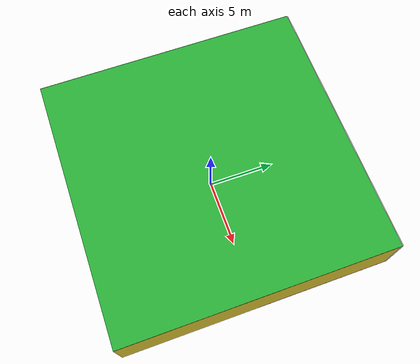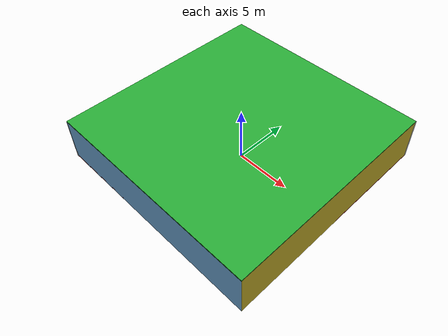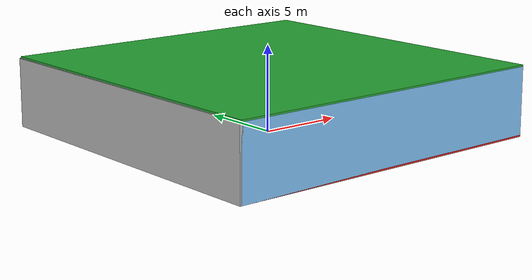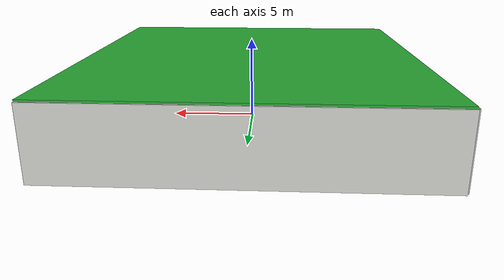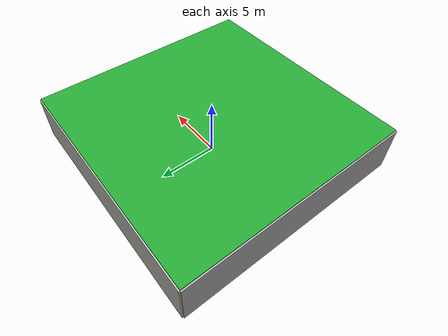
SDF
<sdf version="1.4">
 <world name="default">
  <physics type="ode">
   <max_step_size>0.001</max_step_size>
   <real_time_factor>1</real_time_factor>
   <real_time_update_rate>1000</real_time_update_rate>
   <gravity>0 0 -9.8</gravity>
  </physics>
  <scene><ambient>0.4 0.4 0.4 1</ambient><background>0.7 0.7 0.7 1</background><shadows>1</shadows></scene>
  <model name="Surrounding">
   <static>1</static>
   <link name="Ceiling">
    <collision name="Ceiling_Collision"><geometry><box><size>20 20 0.1</size></box></geometry></collision>
    <visual name="Ceiling_Visual">
     <geometry><box><size>20 20 0.1</size></box></geometry>
     <material>
      <script><uri>file://media/materials/scripts/gazebo.material</uri><name>Gazebo/Green</name></script>
     </material>
    </visual>
    <pose>0 0 4.05 0 0 0</pose>
   </link>
   <link name="Wall_South">
    <collision name="Wall_South_Collision">
     <geometry><box><size>20 0 4</size></box></geometry>
     <pose>0 0 2 0 -0 0</pose>
    </collision>
    <visual name="Wall_South_Visual">
     <pose>0 0 2 0 -0 0</pose>
     <geometry><box><size>20 0 4</size></box></geometry>
     <material>
      <script><uri>file://media/materials/scripts/gazebo.material</uri><name>Gazebo/SkyBlue</name></script>
     </material>
    </visual>
    <velocity_decay><linear>0</linear><angular>0</angular></velocity_decay>
    <pose>0 -10 0 0 -0 0</pose>
   </link>
   <link name="Wall_East">
    <collision name="Wall_21_Collision">
     <geometry><box><size>20 0 4</size></box></geometry>
     <pose>0 0 2 0 -0 0</pose>
    </collision>
    <visual name="Wall_21_Visual">
     <pose>0 0 2 0 -0 0</pose>
     <geometry><box><size>20 0 4</size></box></geometry>
     <material>
      <script><uri>file://media/materials/scripts/gazebo.material</uri><name>Gazebo/ZincYellow</name></script>
     </material>
    </visual>
    <velocity_decay><linear>0</linear><angular>0</angular></velocity_decay>
    <pose>10 0 0 0 -0 1.5708</pose>
   </link>
   <link name="Wall_North">
    <collision name="Wall_22_Collision">
     <geometry><box><size>20 0.2 4</size></box></geometry>
     <pose>0 0 2 0 -0 0</pose>
    </collision>
    <visual name="Wall_22_Visual">
     <pose>0 0 2 0 -0 0</pose>
     <geometry><box><size>20 0.2 4</size></box></geometry>
     <material>
      <script><uri>file://media/materials/scripts/gazebo.material</uri><name>Gazebo/CeilingTiled</name></script>
     </material>
    </visual>
    <velocity_decay><linear>0</linear><angular>0</angular></velocity_decay>
    <pose>0 10 0 0 -0 0</pose>
   </link>
   <link name="Wall_West">
    <collision name="Wall_23_Collision">
     <geometry><box><size>20 0.2 4</size></box></geometry>
     <pose>0 0 2 0 -0 0</pose>
    </collision>
    <visual name="Wall_23_Visual">
     <pose>0 0 2 0 -0 0</pose>
     <geometry><box><size>20 0.2 4</size></box></geometry>
     <material>
      <script><uri>file://media/materials/scripts/gazebo.material</uri><name>Gazebo/JointAnchor</name></script>
     </material>
    </visual>
    <velocity_decay><linear>0</linear><angular>0</angular></velocity_decay>
    <pose>-10 0 0 0 0 -1.5708</pose>
   </link>
   <link name="Ground_link">
    <collision name="collision">
     <pose>0 0 .05 0 -0 0</pose>
     <geometry><box><size>20 20 0.1</size></box></geometry>
    </collision>
    <visual name="visual">
     <pose>0 0 .05 0 -0 0</pose>
     <geometry><box><size>20 20 0.1</size></box></geometry>
     <material>
      <script><uri>file://media/materials/scripts/gazebo.material</uri><name>Gazebo/RedGlow</name></script>
     </material>
    </visual>
   </link>
   <static>1</static>
  </model>
  <spherical_coordinates>
   <surface_model>EARTH_WGS84</surface_model>
   <latitude_deg>0</latitude_deg>
   <longitude_deg>0</longitude_deg>
   <elevation>0</elevation>
   <heading_deg>0</heading_deg>
  </spherical_coordinates>
  <light name="lightball_0" type="diffuse">
   <diffuse>0.8 0.8 0.8 1</diffuse>
   <specular>0.2 0.2 0.2 1</specular>
   <attenuation>
    <range>100</range>
    <constant>0.7</constant>
    <linear>0.01</linear>
    <quadratic>0.001</quadratic>
   </attenuation>
   <direction>-0.5 0.1 -0.9</direction>
   <pose>-9.54236144713 -5.88961538688 1.21881430313 0 0 0</pose>
  </light>
  <light name="lightball_1" type="diffuse">
   <diffuse>0.8 0.8 0.8 1</diffuse>
   <specular>0.2 0.2 0.2 1</specular>
   <attenuation>
    <range>100</range>
    <constant>0.7</constant>
    <linear>0.01</linear>
    <quadratic>0.001</quadratic>
   </attenuation>
   <direction>-0.5 0.1 -0.9</direction>
   <pose>-4.3609973392 0.514596325583 1.57931799587 0 0 0</pose>
  </light>
  <light name="lightball_2" type="diffuse">
   <diffuse>0.8 0.8 0.8 1</diffuse>
   <specular>0.2 0.2 0.2 1</specular>
   <attenuation>
    <range>100</range>
    <constant>0.7</constant>
    <linear>0.01</linear>
    <quadratic>0.001</quadratic>
   </attenuation>
   <direction>-0.5 0.1 -0.9</direction>
   <pose>5.34819422359 3.2471742934 2.90000757869 0 0 0</pose>
  </light>
  <include>
   <uri>model://robocup_3Dsim_goal</uri>
   <pose>-1.02907227061 2.09149719817 0 0 0 1.00600629459</pose>
  </include>
  <include>
   <uri>model://construction_cone</uri>
   <pose>4.96121963785 -7.59612056417 0 0 0 0.531247459094</pose>
  </include>
 </world>
</sdf>

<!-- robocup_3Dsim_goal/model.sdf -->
<sdf version="1.5">
  <model name="robocup_3d_goal">
    <static>true</static>
    <link name="left_post">
      <pose>0 1.05 0.45 0 0 0</pose>
      <collision name="collision">
        <geometry>
          <cylinder>
            <radius>0.05</radius>
            <length>0.9</length>
          </cylinder>
        </geometry>
      </collision>
      <visual name="visual">
        <geometry>
          <cylinder>
            <radius>0.05</radius>
            <length>0.9</length>
          </cylinder>
        </geometry>
        <material>
          <script>
            <uri>file://media/materials/scripts/gazebo.material</uri>
            <name>Gazebo/ZincYellow</name>
          </script>
        </material>
      </visual>
    </link>
    <link name="left_support_horiz_lower">
      <pose>0.30 1.05 0.01 0 0 0</pose>
      <collision name="collision">
        <geometry>
          <box>
            <size>0.50 0.02 0.02</size>
          </box>
        </geometry>
      </collision>
      <visual name="visual">
        <geometry>
          <box>
            <size>0.50 0.02 0.02</size>
          </box>
        </geometry>
        <material>
          <script>
            <uri>file://media/materials/scripts/gazebo.material</uri>
            <name>Gazebo/White</name>
          </script>
        </material>
      </visual>
    </link>
    <link name="left_support_horiz_upper">
      <pose>0.30 1.05 0.79 0 0 0</pose>
      <collision name="collision">
        <geometry>
          <box>
            <size>0.50 0.02 0.02</size>
          </box>
        </geometry>
      </collision>
      <visual name="visual">
        <geometry>
          <box>
            <size>0.50 0.02 0.02</size>
          </box>
        </geometry>
        <material>
          <script>
            <uri>file://media/materials/scripts/gazebo.material</uri>
            <name>Gazebo/White</name>
          </script>
        </material>
      </visual>
    </link>
    <link name="left_support_vertical">
      <pose>0.56 1.05 0.4 0 1.5708 0</pose>
      <collision name="collision">
        <geometry>
          <box>
            <size>0.80 0.02 0.02</size>
          </box>
        </geometry>
      </collision>
      <visual name="visual">
        <geometry>
          <box>
            <size>0.80 0.02 0.02</size>
          </box>
        </geometry>
        <material>
          <script>
            <uri>file://media/materials/scripts/gazebo.material</uri>
            <name>Gazebo/White</name>
          </script>
        </material>
      </visual>
    </link>
    <link name="right_support_horiz_lower">
      <pose>0.30 -1.05 0.01 0 0 0</pose>
      <collision name="collision">
        <geometry>
          <box>
            <size>0.50 0.02 0.02</size>
          </box>
        </geometry>
      </collision>
      <visual name="visual">
        <geometry>
          <box>
            <size>0.50 0.02 0.02</size>
          </box>
        </geometry>
        <material>
          <script>
            <uri>file://media/materials/scripts/gazebo.material</uri>
            <name>Gazebo/White</name>
          </script>
        </material>
      </visual>
    </link>
    <link name="right_support_horiz_upper">
      <pose>0.30 -1.05 0.79 0 0 0</pose>
      <collision name="collision">
        <geometry>
          <box>
            <size>0.50 0.02 0.02</size>
          </box>
        </geometry>
      </collision>
      <visual name="visual">
        <geometry>
          <box>
            <size>0.50 0.02 0.02</size>
          </box>
        </geometry>
        <material>
          <script>
            <uri>file://media/materials/scripts/gazebo.material</uri>
            <name>Gazebo/White</name>
          </script>
        </material>
      </visual>
    </link>
    <link name="right_support_vertical">
      <pose>0.56 -1.05 0.4 0 1.5708 0</pose>
      <collision name="collision">
        <geometry>
          <box>
            <size>0.80 0.02 0.02</size>
          </box>
        </geometry>
      </collision>
      <visual name="visual">
        <geometry>
          <box>
            <size>0.80 0.02 0.02</size>
          </box>
        </geometry>
        <material>
          <script>
            <uri>file://media/materials/scripts/gazebo.material</uri>
            <name>Gazebo/White</name>
          </script>
        </material>
      </visual>
    </link>
    <link name="center_support_horiz_lower">
      <pose>0.56 0 0.01 0 1.5708 0</pose>
      <collision name="collision">
        <geometry>
          <box>
            <size>0.02 2.08 0.02</size>
          </box>
        </geometry>
      </collision>
      <visual name="visual">
        <geometry>
          <box>
            <size>0.02 2.08 0.02</size>
          </box>
        </geometry>
        <material>
          <script>
            <uri>file://media/materials/scripts/gazebo.material</uri>
            <name>Gazebo/White</name>
          </script>
        </material>
      </visual>
    </link>
    <link name="center_support_horiz_upper">
      <pose>0.56 0 0.79 0 1.5708 0</pose>
      <collision name="collision">
        <geometry>
          <box>
            <size>0.02 2.08 0.02</size>
          </box>
        </geometry>
      </collision>
      <visual name="visual">
        <geometry>
          <box>
            <size>0.02 2.08 0.02</size>
          </box>
        </geometry>
        <material>
          <script>
            <uri>file://media/materials/scripts/gazebo.material</uri>
            <name>Gazebo/White</name>
          </script>
        </material>
      </visual>
    </link>
    <link name="right_post">
      <pose>0 -1.05 0.45 0 0 0</pose>
      <collision name="collision">
        <geometry>
          <cylinder>
            <radius>0.05</radius>
            <length>0.9</length>
          </cylinder>
        </geometry>
      </collision>
      <visual name="visual">
        <geometry>
          <cylinder>
            <radius>0.05</radius>
            <length>0.9</length>
          </cylinder>
        </geometry>
        <material>
          <script>
            <uri>file://media/materials/scripts/gazebo.material</uri>
            <name>Gazebo/ZincYellow</name>
          </script>
        </material>
      </visual>
    </link>
    <link name="crossbar">
      <pose>0 0 0.85 1.57 1.57 0</pose>
      <collision name="collision">
        <geometry>
          <cylinder>
            <radius>0.05</radius>
            <length>2.0</length>
          </cylinder>
        </geometry>
      </collision>
      <visual name="visual">
        <geometry>
          <cylinder>
            <radius>0.05</radius>
            <length>2.0</length>
          </cylinder>
        </geometry>
        <material>
          <script>
            <uri>file://media/materials/scripts/gazebo.material</uri>
            <name>Gazebo/ZincYellow</name>
          </script>
        </material>
      </visual>
    </link>
    <link name="center_net">
      <pose>0.56 0 0.40 0 0 0</pose>
      <collision name="collision">
        <geometry>
          <box>
            <size>0.01 2.1 0.80</size>
          </box>
        </geometry>
      </collision>
      <visual name="visual">
        <geometry>
          <box>
            <size>0.01 2.1 0.80</size>
          </box>
        </geometry>
        <material>
          <script>
            <uri>model://../model_source/models/robocup09_spl_field/materials/scripts/</uri>
            <uri>model://../model_source/models/robocup09_spl_field/materials/textures/</uri>
            <name>RoboCup/Net</name>
          </script>
        </material>
      </visual>
    </link>
    <link name="left_net">
      <pose>0.30 1.05 0.40 0 0 0</pose>
      <collision name="collision">
        <geometry>
          <box>
            <size>0.50 0.01 0.76</size>
          </box>
        </geometry>
      </collision>
      <visual name="visual">
        <geometry>
          <box>
            <size>0.50 0.01 0.76</size>
          </box>
        </geometry>
        <material>
          <script>
            <uri>model://../model_source/models/robocup09_spl_field/materials/scripts/</uri>
            <uri>model://../model_source/models/robocup09_spl_field/materials/textures/</uri>
            <name>RoboCup/Net</name>
          </script>
        </material>
      </visual>
    </link>
    <link name="right_net">
      <pose>0.30 -1.05 0.40 0 0 0</pose>
      <collision name="collision">
        <geometry>
          <box>
            <size>0.50 0.01 0.76</size>
          </box>
        </geometry>
      </collision>
      <visual name="visual">
        <geometry>
          <box>
            <size>0.50 0.01 0.76</size>
          </box>
        </geometry>
        <material>
          <script>
            <uri>model://../model_source/models/robocup09_spl_field/materials/scripts/</uri>
            <uri>model://../model_source/models/robocup09_spl_field/materials/textures/</uri>
            <name>RoboCup/Net</name>
          </script>
        </material>
      </visual>
    </link>
  </model>
</sdf>

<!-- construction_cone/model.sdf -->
<sdf version="1.5">
  <model name="Construction Cone">
    <link name="link">
      <collision name="collision">
        <geometry>
          <mesh>
            <scale>10 10 10</scale>
            <uri>file://isr-testbed/construction_cone/meshes/construction_cone.dae</uri>
          </mesh>
        </geometry>
      </collision>
      <visual name="visual">
        <geometry>
          <mesh>
            <scale>10 10 10</scale>
            <uri>file://isr-testbed/construction_cone/meshes/construction_cone.dae</uri>
          </mesh>
        </geometry>
      </visual>
    </link>
  </model>
</sdf>
